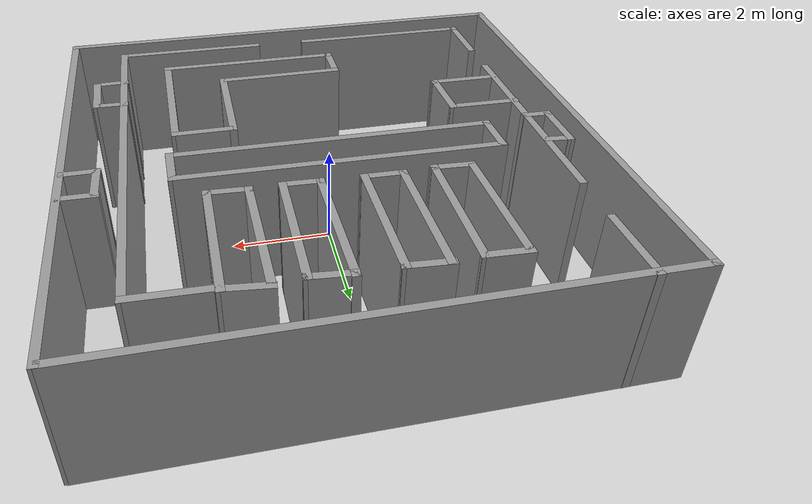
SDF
<sdf version="1.7">
 <world name="default">
  <light name="sun" type="directional">
   <pose>0 0 10 0 -0 0</pose>
   <diffuse>0.8 0.8 0.8 1</diffuse>
   <specular>0.2 0.2 0.2 1</specular>
   <attenuation>
    <range>1000</range>
    <constant>0.9</constant>
    <linear>0.01</linear>
    <quadratic>0.001</quadratic>
   </attenuation>
   <direction>-0.5 0.1 -0.9</direction>
   <spot><inner_angle>0</inner_angle><outer_angle>0</outer_angle><falloff>0</falloff></spot>
  </light>
  <gravity>0 0 -9.8</gravity>
  <magnetic_field>6e-06 2.3e-05 -4.2e-05</magnetic_field>
  <atmosphere type="adiabatic"/>
  <physics type="ode">
   <max_step_size>0.001</max_step_size>
   <real_time_factor>1</real_time_factor>
   <real_time_update_rate>1000</real_time_update_rate>
  </physics>
  <scene><ambient>0.4 0.4 0.4 1</ambient><background>0.7 0.7 0.7 1</background><shadows>1</shadows></scene>
  <spherical_coordinates>
   <surface_model>EARTH_WGS84</surface_model>
   <latitude_deg>0</latitude_deg>
   <longitude_deg>0</longitude_deg>
   <elevation>0</elevation>
   <heading_deg>0</heading_deg>
  </spherical_coordinates>
  <model name="map_2">
   <static>1</static>
   <link name="link">
    <collision name="collision">
     <geometry><plane><normal>0 0 1</normal><size>10 10</size></plane></geometry>
     <surface><friction><ode><mu>100</mu><mu2>50</mu2></ode></friction></surface>
    </collision>
    <visual name="visual">
     <cast_shadows>0</cast_shadows>
     <geometry><plane><normal>0 0 1</normal><size>10 10</size></plane></geometry>
     <material>
      <script>
       <uri>model://map_2/materials/scripts</uri>
       <uri>model://map_2/materials/textures/</uri>
       <name>Map2/Image</name>
      </script>
     </material>
    </visual>
   </link>
  </model>
  <model name="map_2_0">
   <pose>0.010408 -0.000486 0 0 -0 0</pose>
   <link name="Wall_1">
    <collision name="Wall_1_Collision">
     <geometry><box><size>10 0.15 2.5</size></box></geometry>
     <pose>0 0 1.25 0 -0 0</pose>
    </collision>
    <visual name="Wall_1_Visual">
     <pose>0 0 1.25 0 -0 0</pose>
     <geometry><box><size>10 0.15 2.5</size></box></geometry>
     <material>
      <script><uri>file://media/materials/scripts/gazebo.material</uri><name>Gazebo/Grey</name></script>
      <ambient>1 1 1 1</ambient>
     </material>
     <meta><layer>0</layer></meta>
    </visual>
    <pose>-0.040218 4.93003 0 0 -0 0</pose>
   </link>
   <link name="Wall_10">
    <collision name="Wall_10_Collision">
     <geometry><box><size>2.62828 0.15 2.5</size></box></geometry>
     <pose>0 0 1.25 0 -0 0</pose>
    </collision>
    <visual name="Wall_10_Visual">
     <pose>0 0 1.25 0 -0 0</pose>
     <geometry><box><size>2.62828 0.15 2.5</size></box></geometry>
     <material>
      <script><uri>file://media/materials/scripts/gazebo.material</uri><name>Gazebo/Grey</name></script>
      <ambient>1 1 1 1</ambient>
     </material>
     <meta><layer>0</layer></meta>
    </visual>
    <pose>-1.60435 2.80394 0 0 -0 -1.57431</pose>
   </link>
   <link name="Wall_11">
    <collision name="Wall_11_Collision">
     <geometry><box><size>0.84701 0.15 2.5</size></box></geometry>
     <pose>0 0 1.25 0 -0 0</pose>
    </collision>
    <visual name="Wall_11_Visual">
     <pose>0 0 1.25 0 -0 0</pose>
     <geometry><box><size>0.84701 0.15 2.5</size></box></geometry>
     <material>
      <script><uri>file://media/materials/scripts/gazebo.material</uri><name>Gazebo/Grey</name></script>
      <ambient>1 1 1 1</ambient>
     </material>
     <meta><layer>0</layer></meta>
    </visual>
    <pose>-1.95652 1.5822 0 0 -0 3.09163</pose>
   </link>
   <link name="Wall_12">
    <collision name="Wall_12_Collision">
     <geometry><box><size>2.61981 0.15 2.5</size></box></geometry>
     <pose>0 0 1.25 0 -0 0</pose>
    </collision>
    <visual name="Wall_12_Visual">
     <pose>0 0 1.25 0 -0 0</pose>
     <geometry><box><size>2.61981 0.15 2.5</size></box></geometry>
     <material>
      <script><uri>file://media/materials/scripts/gazebo.material</uri><name>Gazebo/Grey</name></script>
      <ambient>1 1 1 1</ambient>
     </material>
     <meta><layer>0</layer></meta>
    </visual>
    <pose>-2.32174 2.83437 0 0 -0 1.58488</pose>
   </link>
   <link name="Wall_14">
    <collision name="Wall_14_Collision">
     <geometry><box><size>0.89097 0.15 2.5</size></box></geometry>
     <pose>0 0 1.25 0 -0 0</pose>
    </collision>
    <visual name="Wall_14_Visual">
     <pose>0 0 1.25 0 -0 0</pose>
     <geometry><box><size>0.89097 0.15 2.5</size></box></geometry>
     <material>
      <script><uri>file://media/materials/scripts/gazebo.material</uri><name>Gazebo/Grey</name></script>
      <ambient>1 1 1 1</ambient>
     </material>
     <meta><layer>0</layer></meta>
    </visual>
    <pose>-0.708696 4.06046 0 0 -0 -0.070471</pose>
   </link>
   <link name="Wall_15">
    <collision name="Wall_15_Collision">
     <geometry><box><size>2.59362 0.15 2.5</size></box></geometry>
     <pose>0 0 1.25 0 -0 0</pose>
    </collision>
    <visual name="Wall_15_Visual">
     <pose>0 0 1.25 0 -0 0</pose>
     <geometry><box><size>2.59362 0.15 2.5</size></box></geometry>
     <material>
      <script><uri>file://media/materials/scripts/gazebo.material</uri><name>Gazebo/Grey</name></script>
      <ambient>1 1 1 1</ambient>
     </material>
     <meta><layer>0</layer></meta>
    </visual>
    <pose>-0.326087 2.81264 0 0 -0 -1.56012</pose>
   </link>
   <link name="Wall_16">
    <collision name="Wall_16_Collision">
     <geometry><box><size>0.854831 0.15 2.5</size></box></geometry>
     <pose>0 0 1.25 0 -0 0</pose>
    </collision>
    <visual name="Wall_16_Visual">
     <pose>0 0 1.25 0 -0 0</pose>
     <geometry><box><size>0.854831 0.15 2.5</size></box></geometry>
     <material>
      <script><uri>file://media/materials/scripts/gazebo.material</uri><name>Gazebo/Grey</name></script>
      <ambient>1 1 1 1</ambient>
     </material>
     <meta><layer>0</layer></meta>
    </visual>
    <pose>-0.665218 1.59959 0 0 -0 3.11691</pose>
   </link>
   <link name="Wall_17">
    <collision name="Wall_17_Collision">
     <geometry><box><size>2.61111 0.15 2.5</size></box></geometry>
     <pose>0 0 1.25 0 -0 0</pose>
    </collision>
    <visual name="Wall_17_Visual">
     <pose>0 0 1.25 0 -0 0</pose>
     <geometry><box><size>2.61111 0.15 2.5</size></box></geometry>
     <material>
      <script><uri>file://media/materials/scripts/gazebo.material</uri><name>Gazebo/Grey</name></script>
      <ambient>1 1 1 1</ambient>
     </material>
     <meta><layer>0</layer></meta>
    </visual>
    <pose>-1.03478 2.83872 0 0 -0 1.58493</pose>
   </link>
   <link name="Wall_19">
    <collision name="Wall_19_Collision">
     <geometry><box><size>0.874301 0.15 2.5</size></box></geometry>
     <pose>0 0 1.25 0 -0 0</pose>
    </collision>
    <visual name="Wall_19_Visual">
     <pose>0 0 1.25 0 -0 0</pose>
     <geometry><box><size>0.874301 0.15 2.5</size></box></geometry>
     <material>
      <script><uri>file://media/materials/scripts/gazebo.material</uri><name>Gazebo/Grey</name></script>
      <ambient>1 1 1 1</ambient>
     </material>
     <meta><layer>0</layer></meta>
    </visual>
    <pose>0.795652 4.00394 0 0 -0 -0.084138</pose>
   </link>
   <link name="Wall_20">
    <collision name="Wall_20_Collision">
     <geometry><box><size>2.58485 0.15 2.5</size></box></geometry>
     <pose>0 0 1.25 0 -0 0</pose>
    </collision>
    <visual name="Wall_20_Visual">
     <pose>0 0 1.25 0 -0 0</pose>
     <geometry><box><size>2.58485 0.15 2.5</size></box></geometry>
     <material>
      <script><uri>file://media/materials/scripts/gazebo.material</uri><name>Gazebo/Grey</name></script>
      <ambient>1 1 1 1</ambient>
     </material>
     <meta><layer>0</layer></meta>
    </visual>
    <pose>1.14783 2.75611 0 0 -0 -1.57794</pose>
   </link>
   <link name="Wall_21">
    <collision name="Wall_21_Collision">
     <geometry><box><size>0.820975 0.15 2.5</size></box></geometry>
     <pose>0 0 1.25 0 -0 0</pose>
    </collision>
    <visual name="Wall_21_Visual">
     <pose>0 0 1.25 0 -0 0</pose>
     <geometry><box><size>0.820975 0.15 2.5</size></box></geometry>
     <material>
      <script><uri>file://media/materials/scripts/gazebo.material</uri><name>Gazebo/Grey</name></script>
      <ambient>1 1 1 1</ambient>
     </material>
     <meta><layer>0</layer></meta>
    </visual>
    <pose>0.804347 1.55177 0 0 -0 3.10265</pose>
   </link>
   <link name="Wall_22">
    <collision name="Wall_22_Collision">
     <geometry><box><size>2.63709 0.15 2.5</size></box></geometry>
     <pose>0 0 1.25 0 -0 0</pose>
    </collision>
    <visual name="Wall_22_Visual">
     <pose>0 0 1.25 0 -0 0</pose>
     <geometry><box><size>2.63709 0.15 2.5</size></box></geometry>
     <material>
      <script><uri>file://media/materials/scripts/gazebo.material</uri><name>Gazebo/Grey</name></script>
      <ambient>1 1 1 1</ambient>
     </material>
     <meta><layer>0</layer></meta>
    </visual>
    <pose>0.452174 2.80829 0 0 -0 1.58478</pose>
   </link>
   <link name="Wall_24">
    <collision name="Wall_24_Collision">
     <geometry><box><size>0.910559 0.15 2.5</size></box></geometry>
     <pose>0 0 1.25 0 -0 0</pose>
    </collision>
    <visual name="Wall_24_Visual">
     <pose>0 0 1.25 0 -0 0</pose>
     <geometry><box><size>0.910559 0.15 2.5</size></box></geometry>
     <material>
      <script><uri>file://media/materials/scripts/gazebo.material</uri><name>Gazebo/Grey</name></script>
      <ambient>1 1 1 1</ambient>
     </material>
     <meta><layer>0</layer></meta>
    </visual>
    <pose>2.06522 4.01264 0 0 -0 -0.103082</pose>
   </link>
   <link name="Wall_25">
    <collision name="Wall_25_Collision">
     <geometry><box><size>2.60231 0.15 2.5</size></box></geometry>
     <pose>0 0 1.25 0 -0 0</pose>
    </collision>
    <visual name="Wall_25_Visual">
     <pose>0 0 1.25 0 -0 0</pose>
     <geometry><box><size>2.60231 0.15 2.5</size></box></geometry>
     <material>
      <script><uri>file://media/materials/scripts/gazebo.material</uri><name>Gazebo/Grey</name></script>
      <ambient>1 1 1 1</ambient>
     </material>
     <meta><layer>0</layer></meta>
    </visual>
    <pose>2.44783 2.74742 0 0 -0 -1.56725</pose>
   </link>
   <link name="Wall_26">
    <collision name="Wall_26_Collision">
     <geometry><box><size>0.872577 0.15 2.5</size></box></geometry>
     <pose>0 0 1.25 0 -0 0</pose>
    </collision>
    <visual name="Wall_26_Visual">
     <pose>0 0 1.25 0 -0 0</pose>
     <geometry><box><size>0.872577 0.15 2.5</size></box></geometry>
     <material>
      <script><uri>file://media/materials/scripts/gazebo.material</uri><name>Gazebo/Grey</name></script>
      <ambient>1 1 1 1</ambient>
     </material>
     <meta><layer>0</layer></meta>
    </visual>
    <pose>2.0913 1.53872 0 0 -0 3.09344</pose>
   </link>
   <link name="Wall_27">
    <collision name="Wall_27_Collision">
     <geometry><box><size>2.62851 0.15 2.5</size></box></geometry>
     <pose>0 0 1.25 0 -0 0</pose>
    </collision>
    <visual name="Wall_27_Visual">
     <pose>0 0 1.25 0 -0 0</pose>
     <geometry><box><size>2.62851 0.15 2.5</size></box></geometry>
     <material>
      <script><uri>file://media/materials/scripts/gazebo.material</uri><name>Gazebo/Grey</name></script>
      <ambient>1 1 1 1</ambient>
     </material>
     <meta><layer>0</layer></meta>
    </visual>
    <pose>1.71304 2.79524 0 0 -0 1.58483</pose>
   </link>
   <link name="Wall_29">
    <collision name="Wall_29_Collision">
     <geometry><box><size>1.55894 0.15 2.5</size></box></geometry>
     <pose>0 0 1.25 0 -0 0</pose>
    </collision>
    <visual name="Wall_29_Visual">
     <pose>0 0 1.25 0 -0 0</pose>
     <geometry><box><size>1.55894 0.15 2.5</size></box></geometry>
     <material>
      <script><uri>file://media/materials/scripts/gazebo.material</uri><name>Gazebo/Grey</name></script>
      <ambient>1 1 1 1</ambient>
     </material>
     <meta><layer>0</layer></meta>
    </visual>
    <pose>3.14783 3.93003 0 0 -0 -0.024686</pose>
   </link>
   <link name="Wall_3">
    <collision name="Wall_3_Collision">
     <geometry><box><size>10.0109 0.15 2.5</size></box></geometry>
     <pose>0 0 1.25 0 -0 0</pose>
    </collision>
    <visual name="Wall_3_Visual">
     <pose>0 0 1.25 0 -0 0</pose>
     <geometry><box><size>10.0109 0.15 2.5</size></box></geometry>
     <material>
      <script><uri>file://media/materials/scripts/gazebo.material</uri><name>Gazebo/Grey</name></script>
      <ambient>1 1 1 1</ambient>
     </material>
     <meta><layer>0</layer></meta>
    </visual>
    <pose>4.95652 -0.009104 0 0 -0 -1.56903</pose>
   </link>
   <link name="Wall_30">
    <collision name="Wall_30_Collision">
     <geometry><box><size>8.31522 0.15 2.5</size></box></geometry>
     <pose>0 0 1.25 0 -0 0</pose>
    </collision>
    <visual name="Wall_30_Visual">
     <pose>0 0 1.25 0 -0 0</pose>
     <geometry><box><size>8.31522 0.15 2.5</size></box></geometry>
     <material>
      <script><uri>file://media/materials/scripts/gazebo.material</uri><name>Gazebo/Grey</name></script>
      <ambient>1 1 1 1</ambient>
     </material>
     <meta><layer>0</layer></meta>
    </visual>
    <pose>3.85652 -0.169974 0 0 -0 -1.56973</pose>
   </link>
   <link name="Wall_31">
    <collision name="Wall_31_Collision">
     <geometry><box><size>3.15881 0.15 2.5</size></box></geometry>
     <pose>0 0 1.25 0 -0 0</pose>
    </collision>
    <visual name="Wall_31_Visual">
     <pose>0 0 1.25 0 -0 0</pose>
     <geometry><box><size>3.15881 0.15 2.5</size></box></geometry>
     <material>
      <script><uri>file://media/materials/scripts/gazebo.material</uri><name>Gazebo/Grey</name></script>
      <ambient>1 1 1 1</ambient>
     </material>
     <meta><layer>0</layer></meta>
    </visual>
    <pose>2.35652 -4.23954 0 0 -0 3.13292</pose>
   </link>
   <link name="Wall_33">
    <collision name="Wall_33_Collision">
     <geometry><box><size>3.837 0.15 2.5</size></box></geometry>
     <pose>0 0 1.25 0 -0 0</pose>
    </collision>
    <visual name="Wall_33_Visual">
     <pose>0 0 1.25 0 -0 0</pose>
     <geometry><box><size>3.837 0.15 2.5</size></box></geometry>
     <material>
      <script><uri>file://media/materials/scripts/gazebo.material</uri><name>Gazebo/Grey</name></script>
      <ambient>1 1 1 1</ambient>
     </material>
     <meta><layer>0</layer></meta>
    </visual>
    <pose>-2.13913 -4.20041 0 0 -0 3.13688</pose>
   </link>
   <link name="Wall_34">
    <collision name="Wall_34_Collision">
     <geometry><box><size>1.36739 0.15 2.5</size></box></geometry>
     <pose>0 0 1.25 0 -0 0</pose>
    </collision>
    <visual name="Wall_34_Visual">
     <pose>0 0 1.25 0 -0 0</pose>
     <geometry><box><size>1.36739 0.15 2.5</size></box></geometry>
     <material>
      <script><uri>file://media/materials/scripts/gazebo.material</uri><name>Gazebo/Grey</name></script>
      <ambient>1 1 1 1</ambient>
     </material>
     <meta><layer>0</layer></meta>
    </visual>
    <pose>-3.98261 -3.58302 0 0 -0 1.5708</pose>
   </link>
   <link name="Wall_36">
    <collision name="Wall_36_Collision">
     <geometry><box><size>4.72412 0.15 2.5</size></box></geometry>
     <pose>0 0 1.25 0 -0 0</pose>
    </collision>
    <visual name="Wall_36_Visual">
     <pose>0 0 1.25 0 -0 0</pose>
     <geometry><box><size>4.72412 0.15 2.5</size></box></geometry>
     <material>
      <script><uri>file://media/materials/scripts/gazebo.material</uri><name>Gazebo/Grey</name></script>
      <ambient>1 1 1 1</ambient>
     </material>
     <meta><layer>0</layer></meta>
    </visual>
    <pose>-3.99131 0.216983 0 0 -0 1.5708</pose>
   </link>
   <link name="Wall_38">
    <collision name="Wall_38_Collision">
     <geometry><box><size>0.586951 0.15 2.5</size></box></geometry>
     <pose>0 0 1.25 0 -0 0</pose>
    </collision>
    <visual name="Wall_38_Visual">
     <pose>0 0 1.25 0 -0 0</pose>
     <geometry><box><size>0.586951 0.15 2.5</size></box></geometry>
     <material>
      <script><uri>file://media/materials/scripts/gazebo.material</uri><name>Gazebo/Grey</name></script>
      <ambient>1 1 1 1</ambient>
     </material>
     <meta><layer>0</layer></meta>
    </visual>
    <pose>-4.22609 1.09959 0 0 -0 3.04192</pose>
   </link>
   <link name="Wall_39">
    <collision name="Wall_39_Collision">
     <geometry><box><size>1.11526 0.15 2.5</size></box></geometry>
     <pose>0 0 1.25 0 -0 0</pose>
    </collision>
    <visual name="Wall_39_Visual">
     <pose>0 0 1.25 0 -0 0</pose>
     <geometry><box><size>1.11526 0.15 2.5</size></box></geometry>
     <material>
      <script><uri>file://media/materials/scripts/gazebo.material</uri><name>Gazebo/Grey</name></script>
      <ambient>1 1 1 1</ambient>
     </material>
     <meta><layer>0</layer></meta>
    </visual>
    <pose>-4.43913 0.638722 0 0 -0 -1.56179</pose>
   </link>
   <link name="Wall_4">
    <collision name="Wall_4_Collision">
     <geometry><box><size>10.063 0.15 2.5</size></box></geometry>
     <pose>0 0 1.25 0 -0 0</pose>
    </collision>
    <visual name="Wall_4_Visual">
     <pose>0 0 1.25 0 -0 0</pose>
     <geometry><box><size>10.063 0.15 2.5</size></box></geometry>
     <material>
      <script><uri>file://media/materials/scripts/gazebo.material</uri><name>Gazebo/Grey</name></script>
      <ambient>1 1 1 1</ambient>
     </material>
     <meta><layer>0</layer></meta>
    </visual>
    <pose>0.008695 -4.93519 0 0 -0 3.14072</pose>
   </link>
   <link name="Wall_40">
    <collision name="Wall_40_Collision">
     <geometry><box><size>0.602508 0.15 2.5</size></box></geometry>
     <pose>0 0 1.25 0 -0 0</pose>
    </collision>
    <visual name="Wall_40_Visual">
     <pose>0 0 1.25 0 -0 0</pose>
     <geometry><box><size>0.602508 0.15 2.5</size></box></geometry>
     <material>
      <script><uri>file://media/materials/scripts/gazebo.material</uri><name>Gazebo/Grey</name></script>
      <ambient>1 1 1 1</ambient>
     </material>
     <meta><layer>0</layer></meta>
    </visual>
    <pose>-4.2087 0.147418 0 0 -0 -0.038443</pose>
   </link>
   <link name="Wall_42">
    <collision name="Wall_42_Collision">
     <geometry><box><size>2.61089 0.15 2.5</size></box></geometry>
     <pose>0 0 1.25 0 -0 0</pose>
    </collision>
    <visual name="Wall_42_Visual">
     <pose>0 0 1.25 0 -0 0</pose>
     <geometry><box><size>2.61089 0.15 2.5</size></box></geometry>
     <material>
      <script><uri>file://media/materials/scripts/gazebo.material</uri><name>Gazebo/Grey</name></script>
      <ambient>1 1 1 1</ambient>
     </material>
     <meta><layer>0</layer></meta>
    </visual>
    <pose>0.543478 -2.59606 0 0 -0 0.003534</pose>
   </link>
   <link name="Wall_43">
    <collision name="Wall_43_Collision">
     <geometry><box><size>2.20219 0.15 2.5</size></box></geometry>
     <pose>0 0 1.25 0 -0 0</pose>
    </collision>
    <visual name="Wall_43_Visual">
     <pose>0 0 1.25 0 -0 0</pose>
     <geometry><box><size>2.20219 0.15 2.5</size></box></geometry>
     <material>
      <script><uri>file://media/materials/scripts/gazebo.material</uri><name>Gazebo/Grey</name></script>
      <ambient>1 1 1 1</ambient>
     </material>
     <meta><layer>0</layer></meta>
    </visual>
    <pose>1.77391 -1.56563 0 0 -0 1.5708</pose>
   </link>
   <link name="Wall_44">
    <collision name="Wall_44_Collision">
     <geometry><box><size>1.26308 0.15 2.5</size></box></geometry>
     <pose>0 0 1.25 0 -0 0</pose>
    </collision>
    <visual name="Wall_44_Visual">
     <pose>0 0 1.25 0 -0 0</pose>
     <geometry><box><size>1.26308 0.15 2.5</size></box></geometry>
     <material>
      <script><uri>file://media/materials/scripts/gazebo.material</uri><name>Gazebo/Grey</name></script>
      <ambient>1 1 1 1</ambient>
     </material>
     <meta><layer>0</layer></meta>
    </visual>
    <pose>2.33043 -0.539539 0 0 -0 0</pose>
   </link>
   <link name="Wall_45">
    <collision name="Wall_45_Collision">
     <geometry><box><size>3.00239 0.15 2.5</size></box></geometry>
     <pose>0 0 1.25 0 -0 0</pose>
    </collision>
    <visual name="Wall_45_Visual">
     <pose>0 0 1.25 0 -0 0</pose>
     <geometry><box><size>3.00239 0.15 2.5</size></box></geometry>
     <material>
      <script><uri>file://media/materials/scripts/gazebo.material</uri><name>Gazebo/Grey</name></script>
      <ambient>1 1 1 1</ambient>
     </material>
     <meta><layer>0</layer></meta>
    </visual>
    <pose>2.90435 -1.96563 0 0 -0 -1.5586</pose>
   </link>
   <link name="Wall_46">
    <collision name="Wall_46_Collision">
     <geometry><box><size>3.75874 0.15 2.5</size></box></geometry>
     <pose>0 0 1.25 0 -0 0</pose>
    </collision>
    <visual name="Wall_46_Visual">
     <pose>0 0 1.25 0 -0 0</pose>
     <geometry><box><size>3.75874 0.15 2.5</size></box></geometry>
     <material>
      <script><uri>file://media/materials/scripts/gazebo.material</uri><name>Gazebo/Grey</name></script>
      <ambient>1 1 1 1</ambient>
     </material>
     <meta><layer>0</layer></meta>
    </visual>
    <pose>1.11739 -3.38302 0 0 -0 3.13677</pose>
   </link>
   <link name="Wall_47">
    <collision name="Wall_47_Collision">
     <geometry><box><size>0.897826 0.15 2.5</size></box></geometry>
     <pose>0 0 1.25 0 -0 0</pose>
    </collision>
    <visual name="Wall_47_Visual">
     <pose>0 0 1.25 0 -0 0</pose>
     <geometry><box><size>0.897826 0.15 2.5</size></box></geometry>
     <material>
      <script><uri>file://media/materials/scripts/gazebo.material</uri><name>Gazebo/Grey</name></script>
      <ambient>1 1 1 1</ambient>
     </material>
     <meta><layer>0</layer></meta>
    </visual>
    <pose>-0.686957 -3.00041 0 0 -0 1.5708</pose>
   </link>
   <link name="Wall_49">
    <collision name="Wall_49_Collision">
     <geometry><box><size>1.48069 0.15 2.5</size></box></geometry>
     <pose>0 0 1.25 0 -0 0</pose>
    </collision>
    <visual name="Wall_49_Visual">
     <pose>0 0 1.25 0 -0 0</pose>
     <geometry><box><size>1.48069 0.15 2.5</size></box></geometry>
     <material>
      <script><uri>file://media/materials/scripts/gazebo.material</uri><name>Gazebo/Grey</name></script>
      <ambient>1 1 1 1</ambient>
     </material>
     <meta><layer>0</layer></meta>
    </visual>
    <pose>-3.34348 -0.491713 0 0 -0 -0.019605</pose>
   </link>
   <link name="Wall_5">
    <collision name="Wall_5_Collision">
     <geometry><box><size>9.99349 0.15 2.5</size></box></geometry>
     <pose>0 0 1.25 0 -0 0</pose>
    </collision>
    <visual name="Wall_5_Visual">
     <pose>0 0 1.25 0 -0 0</pose>
     <geometry><box><size>9.99349 0.15 2.5</size></box></geometry>
     <material>
      <script><uri>file://media/materials/scripts/gazebo.material</uri><name>Gazebo/Grey</name></script>
      <ambient>1 1 1 1</ambient>
     </material>
     <meta><layer>0</layer></meta>
    </visual>
    <pose>-4.95652 -0.009104 0 0 -0 1.57256</pose>
   </link>
   <link name="Wall_50">
    <collision name="Wall_50_Collision">
     <geometry><box><size>1.24579 0.15 2.5</size></box></geometry>
     <pose>0 0 1.25 0 -0 0</pose>
    </collision>
    <visual name="Wall_50_Visual">
     <pose>0 0 1.25 0 -0 0</pose>
     <geometry><box><size>1.24579 0.15 2.5</size></box></geometry>
     <material>
      <script><uri>file://media/materials/scripts/gazebo.material</uri><name>Gazebo/Grey</name></script>
      <ambient>1 1 1 1</ambient>
     </material>
     <meta><layer>0</layer></meta>
    </visual>
    <pose>-2.66957 -1.05258 0 0 -0 -1.55492</pose>
   </link>
   <link name="Wall_51">
    <collision name="Wall_51_Collision">
     <geometry><box><size>1.42838 0.15 2.5</size></box></geometry>
     <pose>0 0 1.25 0 -0 0</pose>
    </collision>
    <visual name="Wall_51_Visual">
     <pose>0 0 1.25 0 -0 0</pose>
     <geometry><box><size>1.42838 0.15 2.5</size></box></geometry>
     <material>
      <script><uri>file://media/materials/scripts/gazebo.material</uri><name>Gazebo/Grey</name></script>
      <ambient>1 1 1 1</ambient>
     </material>
     <meta><layer>0</layer></meta>
    </visual>
    <pose>-3.3 -1.59171 0 0 -0 3.12799</pose>
   </link>
   <link name="Wall_53">
    <collision name="Wall_53_Collision">
     <geometry><box><size>6.28975 0.15 2.5</size></box></geometry>
     <pose>0 0 1.25 0 -0 0</pose>
    </collision>
    <visual name="Wall_53_Visual">
     <pose>0 0 1.25 0 -0 0</pose>
     <geometry><box><size>6.28975 0.15 2.5</size></box></geometry>
     <material>
      <script><uri>file://media/materials/scripts/gazebo.material</uri><name>Gazebo/Grey</name></script>
      <ambient>1 1 1 1</ambient>
     </material>
     <meta><layer>0</layer></meta>
    </visual>
    <pose>-0.06087 1.00829 0 0 -0 -0.014163</pose>
   </link>
   <link name="Wall_54">
    <collision name="Wall_54_Collision">
     <geometry><box><size>0.915415 0.15 2.5</size></box></geometry>
     <pose>0 0 1.25 0 -0 0</pose>
    </collision>
    <visual name="Wall_54_Visual">
     <pose>0 0 1.25 0 -0 0</pose>
     <geometry><box><size>0.915415 0.15 2.5</size></box></geometry>
     <material>
      <script><uri>file://media/materials/scripts/gazebo.material</uri><name>Gazebo/Grey</name></script>
      <ambient>1 1 1 1</ambient>
     </material>
     <meta><layer>0</layer></meta>
    </visual>
    <pose>3.01739 0.5822 0 0 -0 -1.54807</pose>
   </link>
   <link name="Wall_55">
    <collision name="Wall_55_Collision">
     <geometry><box><size>6.28074 0.15 2.5</size></box></geometry>
     <pose>0 0 1.25 0 -0 0</pose>
    </collision>
    <visual name="Wall_55_Visual">
     <pose>0 0 1.25 0 -0 0</pose>
     <geometry><box><size>6.28074 0.15 2.5</size></box></geometry>
     <material>
      <script><uri>file://media/materials/scripts/gazebo.material</uri><name>Gazebo/Grey</name></script>
      <ambient>1 1 1 1</ambient>
     </material>
     <meta><layer>0</layer></meta>
    </visual>
    <pose>-0.039131 0.230026 0 0 -0 3.13166</pose>
   </link>
   <link name="Wall_56">
    <collision name="Wall_56_Collision">
     <geometry><box><size>0.932657 0.15 2.5</size></box></geometry>
     <pose>0 0 1.25 0 -0 0</pose>
    </collision>
    <visual name="Wall_56_Visual">
     <pose>0 0 1.25 0 -0 0</pose>
     <geometry><box><size>0.932657 0.15 2.5</size></box></geometry>
     <material>
      <script><uri>file://media/materials/scripts/gazebo.material</uri><name>Gazebo/Grey</name></script>
      <ambient>1 1 1 1</ambient>
     </material>
     <meta><layer>0</layer></meta>
    </visual>
    <pose>-3.1087 0.651766 0 0 -0 1.58191</pose>
   </link>
   <link name="Wall_59">
    <collision name="Wall_59_Collision">
     <geometry><box><size>0.84587 0.15 2.5</size></box></geometry>
     <pose>0 0 1.25 0 -0 0</pose>
    </collision>
    <visual name="Wall_59_Visual">
     <pose>0 0 1.25 0 -0 0</pose>
     <geometry><box><size>0.84587 0.15 2.5</size></box></geometry>
     <material>
      <script><uri>file://media/materials/scripts/gazebo.material</uri><name>Gazebo/Grey</name></script>
      <ambient>1 1 1 1</ambient>
     </material>
     <meta><layer>0</layer></meta>
    </visual>
    <pose>4.32174 0.799592 0 0 -0 -1.59579</pose>
   </link>
   <link name="Wall_60">
    <collision name="Wall_60_Collision">
     <geometry><box><size>0.741304 0.15 2.5</size></box></geometry>
     <pose>0 0 1.25 0 -0 0</pose>
    </collision>
    <visual name="Wall_60_Visual">
     <pose>0 0 1.25 0 -0 0</pose>
     <geometry><box><size>0.741304 0.15 2.5</size></box></geometry>
     <material>
      <script><uri>file://media/materials/scripts/gazebo.material</uri><name>Gazebo/Grey</name></script>
      <ambient>1 1 1 1</ambient>
     </material>
     <meta><layer>0</layer></meta>
    </visual>
    <pose>4.60869 0.451766 0 0 -0 0</pose>
   </link>
   <link name="Wall_63">
    <collision name="Wall_63_Collision">
     <geometry><box><size>0.741368 0.15 2.5</size></box></geometry>
     <pose>0 0 1.25 0 -0 0</pose>
    </collision>
    <visual name="Wall_63_Visual">
     <pose>0 0 1.25 0 -0 0</pose>
     <geometry><box><size>0.741368 0.15 2.5</size></box></geometry>
     <material>
      <script><uri>file://media/materials/scripts/gazebo.material</uri><name>Gazebo/Grey</name></script>
      <ambient>1 1 1 1</ambient>
     </material>
     <meta><layer>0</layer></meta>
    </visual>
    <pose>4.60869 1.19524 0 0 -0 -0.014705</pose>
   </link>
   <link name="Wall_66">
    <collision name="Wall_66_Collision">
     <geometry><box><size>1.08949 0.15 2.5</size></box></geometry>
     <pose>0 0 1.25 0 -0 0</pose>
    </collision>
    <visual name="Wall_66_Visual">
     <pose>0 0 1.25 0 -0 0</pose>
     <geometry><box><size>1.08949 0.15 2.5</size></box></geometry>
     <material>
      <script><uri>file://media/materials/scripts/gazebo.material</uri><name>Gazebo/Grey</name></script>
      <ambient>1 1 1 1</ambient>
     </material>
     <meta><layer>0</layer></meta>
    </visual>
    <pose>4.40435 -2.44389 0 0 -0 -1.54303</pose>
   </link>
   <link name="Wall_7">
    <collision name="Wall_7_Collision">
     <geometry><box><size>1.51533 0.15 2.5</size></box></geometry>
     <pose>0 0 1.25 0 -0 0</pose>
    </collision>
    <visual name="Wall_7_Visual">
     <pose>0 0 1.25 0 -0 0</pose>
     <geometry><box><size>1.51533 0.15 2.5</size></box></geometry>
     <material>
      <script><uri>file://media/materials/scripts/gazebo.material</uri><name>Gazebo/Grey</name></script>
      <ambient>1 1 1 1</ambient>
     </material>
     <meta><layer>0</layer></meta>
    </visual>
    <pose>-4 4.25611 0 0 -0 -1.55806</pose>
   </link>
   <link name="Wall_70">
    <collision name="Wall_70_Collision">
     <geometry><box><size>0.698929 0.15 2.5</size></box></geometry>
     <pose>0 0 1.25 0 -0 0</pose>
    </collision>
    <visual name="Wall_70_Visual">
     <pose>0 0 1.25 0 -0 0</pose>
     <geometry><box><size>0.698929 0.15 2.5</size></box></geometry>
     <material>
      <script><uri>file://media/materials/scripts/gazebo.material</uri><name>Gazebo/Grey</name></script>
      <ambient>1 1 1 1</ambient>
     </material>
     <meta><layer>0</layer></meta>
    </visual>
    <pose>4.11739 -1.96563 0 0 -0 -0.031735</pose>
   </link>
   <link name="Wall_72">
    <collision name="Wall_72_Collision">
     <geometry><box><size>0.715485 0.15 2.5</size></box></geometry>
     <pose>0 0 1.25 0 -0 0</pose>
    </collision>
    <visual name="Wall_72_Visual">
     <pose>0 0 1.25 0 -0 0</pose>
     <geometry><box><size>0.715485 0.15 2.5</size></box></geometry>
     <material>
      <script><uri>file://media/materials/scripts/gazebo.material</uri><name>Gazebo/Grey</name></script>
      <ambient>1 1 1 1</ambient>
     </material>
     <meta><layer>0</layer></meta>
    </visual>
    <pose>4.12609 -2.92215 0 0 -0 0.03076</pose>
   </link>
   <link name="Wall_9">
    <collision name="Wall_9_Collision">
     <geometry><box><size>0.898635 0.15 2.5</size></box></geometry>
     <pose>0 0 1.25 0 -0 0</pose>
    </collision>
    <visual name="Wall_9_Visual">
     <pose>0 0 1.25 0 -0 0</pose>
     <geometry><box><size>0.898635 0.15 2.5</size></box></geometry>
     <material>
      <script><uri>file://media/materials/scripts/gazebo.material</uri><name>Gazebo/Grey</name></script>
      <ambient>1 1 1 1</ambient>
     </material>
     <meta><layer>0</layer></meta>
    </visual>
    <pose>-1.97391 4.06046 0 0 -0 -0.046478</pose>
   </link>
   <static>1</static>
  </model>
 </world>
</sdf>
